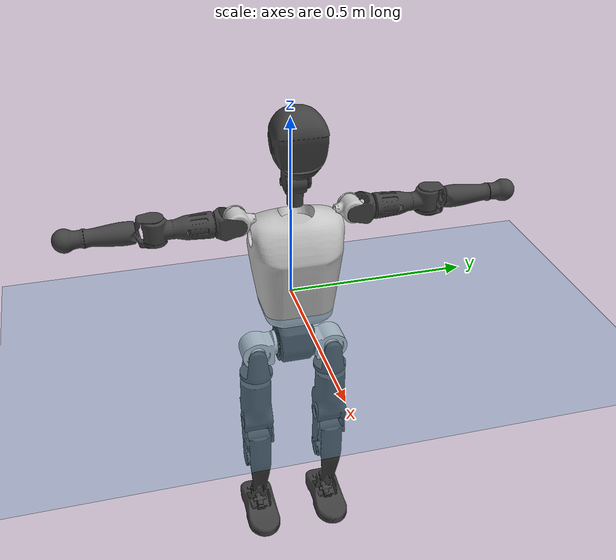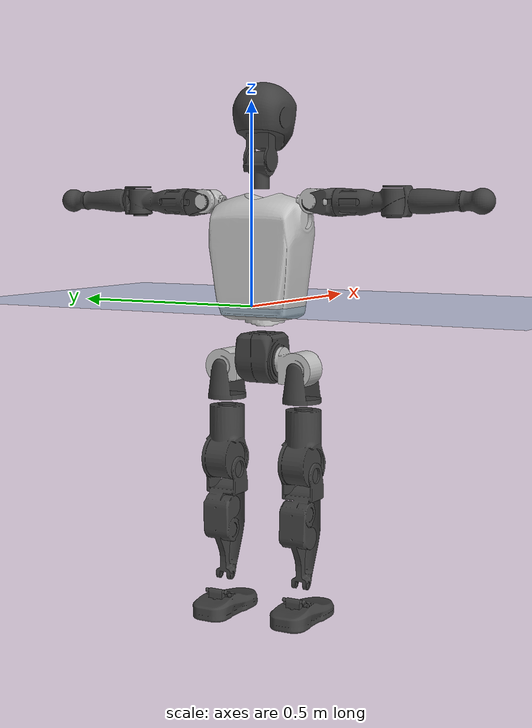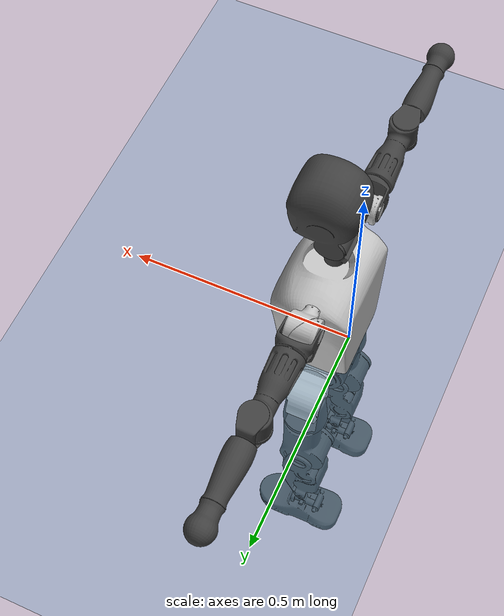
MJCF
<mujoco model="T1">
  <compiler angle="radian" assetdir="assets" balanceinertia="true" inertiafromgeom="false"/>

  <option timestep="0.005" density="1.2" viscosity="2e-05"/>

  <size nkey="1"/>

  <visual>
    <quality shadowsize="8192"/>
    <map shadowclip="0.5"/>
  </visual>

  <default>
    <default class="/">
      <joint armature="0.01" damping="0.01" frictionloss="0.1"/>
      <geom contype="0" conaffinity="0" group="1" solref="-1000 -80"/>
      <site size="0.01 0.005 0.005" group="5"/>
      <general forcelimited="true" biastype="affine" gainprm="25" biasprm="0 -25 -0.6"/>
      <default class="t1">
        <geom rgba="0.25 0.25 0.25 1"/>
        <default class="visual">
          <geom type="mesh" group="2"/>
        </default>
        <default class="collision">
          <geom group="3"/>
        </default>
        <default class="foot">
          <geom size="0.1115 0.05 0.015" type="box" condim="6" group="4" priority="1" solimp="0.015 1 0.015"/>
        </default>
        <default class="reward_collision_sphere">
          <geom group="5" rgba="1 0 0 1"/>
        </default>
      </default>
    </default>
  </default>

  <asset>
    <texture type="skybox" colorspace="auto" name="//unnamed_texture_0" builtin="gradient" rgb1="0.95 0.95 0.95" rgb2="0.95 0.95 0.95" width="100" height="600"/>
    <texture type="2d" colorspace="auto" name="texplane" builtin="checker" rgb1="0.345 0.575 0.748" rgb2="0.345 0.575 0.748" markrgb="1 1 1" width="512" height="512"/>
    <material name="MatPlane" class="/" texture="texplane" texuniform="true" texrepeat="2 2" specular="0.9"/>
    <mesh name="Trunk" class="/" file="Trunk.stl"/>
    <mesh name="H1" class="/" file="H1.stl"/>
    <mesh name="H2" class="/" file="H2.stl"/>
    <mesh name="AL1" class="/" file="AL1.stl"/>
    <mesh name="AL2" class="/" file="AL2.stl"/>
    <mesh name="AL3" class="/" file="AL3.stl"/>
    <mesh name="left_hand_link" class="/" file="left_hand_link.stl"/>
    <mesh name="AR1" class="/" file="AR1.stl"/>
    <mesh name="AR2" class="/" file="AR2.stl"/>
    <mesh name="AR3" class="/" file="AR3.stl"/>
    <mesh name="right_hand_link" class="/" file="right_hand_link.stl"/>
    <mesh name="Waist" class="/" file="Waist.stl"/>
    <mesh name="Hip_Pitch_Left" class="/" file="Hip_Pitch_Left.stl"/>
    <mesh name="Hip_Roll_Left" class="/" file="Hip_Roll_Left.stl"/>
    <mesh name="Hip_Yaw_Left" class="/" file="Hip_Yaw_Left.stl"/>
    <mesh name="Shank_Left" class="/" file="Shank_Left.stl"/>
    <mesh name="Ankle_Cross_Left" class="/" file="Ankle_Cross_Left.stl"/>
    <mesh name="left_foot_link" class="/" file="left_foot_link.stl"/>
    <mesh name="Hip_Pitch_Right" class="/" file="Hip_Pitch_Right.stl"/>
    <mesh name="Hip_Roll_Right" class="/" file="Hip_Roll_Right.stl"/>
    <mesh name="Hip_Yaw_Right" class="/" file="Hip_Yaw_Right.stl"/>
    <mesh name="Shank_Right" class="/" file="Shank_Right.stl"/>
    <mesh name="Ankle_Cross_Right" class="/" file="Ankle_Cross_Right.stl"/>
    <mesh name="right_foot_link" class="/" file="right_foot_link.stl"/>
  </asset>

  <worldbody>
    <geom name="floor" class="/" size="100 100 0.125" type="plane" group="0" material="MatPlane"/>
    <light name="toplight_shadow" class="/" pos="0 0 5" dir="0.0990148 0.0990148 -0.990148" type="directional" ambient="0.04 0.04 0.04" diffuse="0.55 0.55 0.55" specular="0.12 0.12 0.12"/>
    <light name="toplight_fill" class="/" pos="0 0 5" dir="0.0990148 0.0990148 -0.990148" type="directional" castshadow="false" ambient="0.04 0.04 0.04" diffuse="0.3 0.3 0.3" specular="0.08 0.08 0.08"/>
    <body name="trunk" childclass="t1" pos="9.68801e-05 -0.00171957 -0.000497019" quat="0.999999 -0.000558519 0.000600399 -0.0010171">
      <inertial pos="0.0390393 -0.00363585 0.123508" quat="0.999968 0.0014686 -0.00775443 -0.000943012" mass="10.7574" diaginertia="0.0245175 0.0742907 0.127555"/>
      <joint name="//unnamed_joint_0" type="free" armature="0" damping="0" frictionloss="0"/>
      <geom name="//unnamed_geom_1" class="visual" rgba="0.76 0.76 0.76 1" mesh="Trunk"/>
      <geom name="//unnamed_geom_2" class="collision" size="0.0738598 0.0984797 0.14772" pos="0.0460431 0 0.142583" type="box"/>
      <geom name="//unnamed_geom_3" class="reward_collision_sphere" size="0.113252" pos="0.0460431 0 0.118819"/>
      <geom name="//unnamed_geom_4" class="reward_collision_sphere" size="0.014772" pos="0.0460431 0.0848994 0"/>
      <geom name="//unnamed_geom_5" class="reward_collision_sphere" size="0.014772" pos="0.0460431 -0.0848994 0"/>
      <geom name="//unnamed_geom_6" class="reward_collision_sphere" size="0.014772" pos="0.0460431 0.106873 0.213874"/>
      <geom name="//unnamed_geom_7" class="reward_collision_sphere" size="0.014772" pos="0.0460431 -0.106873 0.213874"/>
      <site name="imu" pos="0.0130159 -0.00344212 -0.0130507" size="0.00984797"/>
      <camera name="track" pos="0 -1.99763 0" quat="0.707107 0.707107 0 0" mode="trackcom"/>
      <camera name="ego_camera" pos="0.093621 0 0.499039" quat="-0.5 -0.5 0.5 0.5"/>
      <body name="H1" pos="0.0454336 0.00124654 0.288986" quat="1 0.000250148 -0.000224317 0.000236469">
        <inertial pos="-0.00360811 0.000893867 0.0696071" quat="0.756379 -0.0125658 -0.00482654 0.653995" mass="0.427109" diaginertia="6.46841e-05 0.000218115 0.000335224"/>
        <joint name="AAHead_yaw" pos="0 0 0" axis="-0.0125954 0.000956387 0.99992" stiffness="0.00789428" range="-1.56841 1.59043" armature="0.00868936" damping="0.0101535" frictionloss="0.0988216"/>
        <geom name="//unnamed_geom_8" class="visual" mesh="H1"/>
        <body name="H2" pos="0.00154011 0.00237126 0.0727906" quat="1 -6.03723e-05 0.000100036 -0.000487049">
          <inertial pos="0.00719677 0.00356797 0.117625" quat="0.988029 0.106425 -0.0742092 -0.0834581" mass="0.606286" diaginertia="0.000564963 0.0019275 0.00409946"/>
          <joint name="Head_pitch" pos="0 0 0" axis="-0.00144546 -0.999985 -0.00529891" stiffness="0.00110075" range="-1.22898 0.349545" armature="0.00859174" damping="0.0106728" frictionloss="0.108309"/>
          <geom name="//unnamed_geom_9" class="visual" mesh="H2"/>
          <geom name="//unnamed_geom_10" class="collision" size="0.0787838" pos="0.00767386 0 0.130701"/>
          <geom name="//unnamed_geom_11" class="reward_collision_sphere" size="0.0886317" pos="0.0153477 0 0.118819"/>
        </body>
      </body>
      <body name="AL1" pos="0.0445887 0.106702 0.258037" quat="1 -0.000152074 0.000353049 -1.89438e-05">
        <inertial pos="-0.00317905 0.0437078 0.000320055" quat="0.501105 0.495014 -0.505487 0.498336" mass="0.509295" diaginertia="0.000370913 0.00130423 0.000678214"/>
        <joint name="Left_Shoulder_Pitch" pos="0 0 0" axis="0.0122085 0.999916 -0.00428431" stiffness="0.000271473" range="-3.29237 1.18732" armature="0.0103604" damping="0.00976897" frictionloss="0.100521"/>
        <geom name="//unnamed_geom_12" class="visual" rgba="0.76 0.76 0.76 1" mesh="AL1"/>
        <body name="AL2" pos="-0.000251374 0.0464374 -0.0027504" quat="1 -9.6715e-05 4.18556e-05 -0.000268947">
          <inertial pos="0.0046946 0.0361449 -0.00306443" quat="0.491365 0.504363 -0.482112 0.521293" mass="0.148932" diaginertia="0.000106074 0.00034311 0.00041004"/>
          <joint name="Left_Shoulder_Roll" pos="0 0 0" axis="-0.999966 0.00761939 0.00304026" range="-1.57817 1.71821" armature="0.00976692" damping="0.00357437" frictionloss="0.0964619"/>
          <geom name="//unnamed_geom_13" class="visual" mesh="AL2"/>
          <body name="AL3" pos="0.00128989 0.0614735 0.00169109" quat="1 0.000118606 5.86874e-05 -6.46891e-05">
            <inertial pos="-0.00281726 0.0850937 -0.000711902" quat="0.703645 0.710454 0.0101804 -0.00595856" mass="0.99275" diaginertia="0.00353745 0.0128277 0.0014511"/>
            <joint name="Left_Elbow_Pitch" pos="0 0 0" axis="-0.00118328 -0.999999 -0.00101807" range="-2.27695 2.29075" armature="0.00973484" damping="0.0200227" frictionloss="0.110228"/>
            <geom name="//unnamed_geom_14" class="visual" mesh="AL3"/>
            <geom name="//unnamed_geom_15" class="collision" size="0.0295439 0.0738598" pos="0 0.0499409 0" quat="0.707105 0.707108 0 0" type="cylinder"/>
            <geom name="//unnamed_geom_16" class="reward_collision_sphere" size="0.0354527"/>
            <body name="left_hand_link" pos="0.00308047 0.149749 0.00324575" quat="1 -0.000246332 -0.000181539 0.000401503">
              <inertial pos="0.00250143 0.1069 -0.00233505" quat="0.708568 0.705642 0.000394369 0.000462499" mass="0.312043" diaginertia="0.00216849 0.0082489 0.000525295"/>
              <joint name="Left_Elbow_Yaw" pos="0 0 0" axis="0.00523518 0.00588491 0.999969" range="-2.42725 0.0128308" armature="0.0111192" damping="0.0197744" frictionloss="0.0985657"/>
              <geom name="//unnamed_geom_17" class="visual" mesh="left_hand_link"/>
              <geom name="//unnamed_geom_18" class="collision" size="0.0295439 0.0861697" pos="0 0.129846 0" quat="0.707105 0.707108 0 0" type="cylinder"/>
              <geom name="//unnamed_geom_19" class="reward_collision_sphere" size="0.0492399"/>
              <geom name="//unnamed_geom_20" class="reward_collision_sphere" size="0.0344679" pos="0 0.10987 0"/>
              <geom name="//unnamed_geom_21" class="reward_collision_sphere" size="0.0344679" pos="0 0.214746 0"/>
            </body>
          </body>
        </body>
      </body>
      <body name="AR1" pos="0.0453631 -0.104456 0.259499" quat="1 0.000301186 -0.000341258 -0.000440214">
        <inertial pos="0.000144244 -0.0463585 0.00123138" quat="0.503757 0.494351 -0.506375 0.49541" mass="0.520604" diaginertia="0.0003624 0.00133588 0.000717877"/>
        <joint name="Right_Shoulder_Pitch" pos="0 0 0" axis="0.00044957 -0.999999 0.00109303" stiffness="0.00110972" range="-1.17886 3.3148" armature="0.00970915" damping="0.013352" frictionloss="0.0921335"/>
        <geom name="//unnamed_geom_22" class="visual" rgba="0.76 0.76 0.76 1" mesh="AR1"/>
        <body name="AR2" pos="2.73715e-05 -0.0475761 -0.00269299" quat="0.999999 0.000536162 0.00142239 0.000127682">
          <inertial pos="0.00202869 -0.0374554 0.000663943" quat="0.5218 0.487201 -0.503555 0.486613" mass="0.147742" diaginertia="0.00010325 0.000339988 0.000403081"/>
          <joint name="Right_Shoulder_Roll" pos="0 0 0" axis="-0.999996 0.00276672 0.000373073" range="-1.76724 1.54164" armature="0.00986252" damping="0" frictionloss="0.10367"/>
          <geom name="//unnamed_geom_23" class="visual" mesh="AR2"/>
          <body name="AR3" pos="-0.00312834 -0.0601815 0.000207153" quat="0.999999 0.000171794 0.000854042 0.00109728">
            <inertial pos="0.00168474 -0.0856544 0.00129906" quat="0.707416 0.706782 -0.00235915 -0.00411552" mass="0.969838" diaginertia="0.00346899 0.0128005 0.00146278"/>
            <joint name="Right_Elbow_Pitch" pos="0 0 0" axis="-0.00460098 0.999952 0.00862052" range="-2.28548 2.23227" armature="0.0100996" damping="0.00511835" frictionloss="0.106605"/>
            <geom name="//unnamed_geom_24" class="visual" mesh="AR3"/>
            <geom name="//unnamed_geom_25" class="collision" size="0.0295439 0.0738598" pos="0 -0.0499409 0" quat="0.707105 0.707108 0 0" type="cylinder"/>
            <geom name="//unnamed_geom_26" class="reward_collision_sphere" size="0.0354527"/>
            <body name="right_hand_link" pos="-0.00317467 -0.14924 0.00228874" quat="0.999999 -0.00123004 0.00077613 0.000270388">
              <inertial pos="0.00189075 -0.108808 -0.00187534" quat="0.706627 0.707585 -0.00110577 -0.00080835" mass="0.303781" diaginertia="0.00206181 0.00762565 0.000511427"/>
              <joint name="Right_Elbow_Yaw" pos="0 0 0" axis="-0.00121695 0.00143281 0.999998" range="0.00714331 2.38169" armature="0.00956474" damping="0.00673173" frictionloss="0.0970811"/>
              <geom name="//unnamed_geom_27" class="visual" mesh="right_hand_link"/>
              <geom name="//unnamed_geom_28" class="collision" size="0.0295439 0.0861697" pos="0 -0.129846 0" quat="0.707105 0.707108 0 0" type="cylinder"/>
              <geom name="//unnamed_geom_29" class="reward_collision_sphere" size="0.0492399"/>
              <geom name="//unnamed_geom_30" class="reward_collision_sphere" size="0.0344679" pos="0 -0.10987 0"/>
              <geom name="//unnamed_geom_31" class="reward_collision_sphere" size="0.0344679" pos="0 -0.214746 0"/>
            </body>
          </body>
        </body>
      </body>
      <body name="Waist" pos="0.0460449 -0.00264855 -0.135181" quat="1 0.000281837 -9.3433e-05 -3.1271e-05">
        <inertial pos="0.00137593 0.00218834 0.00973872" quat="0.9843 -0.00889141 -0.176169 -0.00625036" mass="2.30958" diaginertia="0.00138816 0.00498574 0.0105293"/>
        <joint name="Waist" pos="0 0 0" axis="-0.000681089 0.00155653 0.999999" range="-1.5982 1.54978" armature="0.00935971" damping="0.00215102" frictionloss="0.10913"/>
        <geom name="//unnamed_geom_32" class="visual" mesh="Waist"/>
        <body name="Hip_Pitch_Left" pos="0.00398939 0.104902 -0.000912888" quat="1 -1.66616e-07 -4.74738e-08 -2.24516e-07">
          <inertial pos="-0.000165629 -0.00819219 -0.0243608" quat="0.975279 0.220348 0.0163909 0.00292653" mass="0.947234" diaginertia="0.000471574 0.00142077 0.00290416"/>
          <joint name="Left_Hip_Pitch" pos="0 0 0" axis="0.00674562 0.999921 -0.0105671" stiffness="0.0140029" range="-1.81876 1.62806" armature="0.0100099" damping="0" frictionloss="0.100719"/>
          <geom name="//unnamed_geom_33" class="visual" rgba="0.76 0.76 0.76 1" mesh="Hip_Pitch_Left"/>
          <body name="Hip_Roll_Left" pos="0.0028424 0.00163311 -0.0267965" quat="1 -1.39434e-05 4.88002e-05 4.22158e-05">
            <inertial pos="0.00196015 -0.0010069 -0.0666145" quat="0.709774 -0.00940257 -0.00496109 0.704349" mass="0.374938" diaginertia="0.00049353 0.00150793 0.00122491"/>
            <joint name="Left_Hip_Roll" pos="0 0 0" axis="-0.999957 0.00769491 0.00513536" range="-1.59031 0.254096" armature="0.00919439" damping="0.0125743" frictionloss="0.0935445"/>
            <geom name="//unnamed_geom_34" class="visual" mesh="Hip_Roll_Left"/>
            <geom name="//unnamed_geom_35" class="reward_collision_sphere" size="0.0541638"/>
            <body name="Hip_Yaw_Left" pos="0.00166655 0.00234043 -0.0964932" quat="1 -0.000105401 -9.6251e-05 -0.000107379">
              <inertial pos="-0.00702362 -0.000394536 -0.105779" quat="0.702327 -0.0349186 -0.0198467 0.710721" mass="2.0393" diaginertia="0.00701744 0.0249087 0.00640137"/>
              <joint name="Left_Hip_Yaw" pos="0 0 0" axis="0.000242478 -0.000323519 -1" range="-0.980944 1.04501" armature="0.0109829" damping="0.00443512" frictionloss="0.0991465"/>
              <geom name="//unnamed_geom_36" class="visual" mesh="Hip_Yaw_Left"/>
              <geom name="//unnamed_geom_37" class="collision" size="0.0492399 0.0787838" type="cylinder"/>
              <body name="Shank_Left" pos="-0.0098173 0.000187799 -0.161993" quat="1 0.000221883 0.000248573 -0.000729863">
                <inertial pos="-0.00348448 9.42204e-06 -0.150515" quat="0.997809 0.00370347 -0.0230438 0.0619061" mass="1.65138" diaginertia="0.00924048 0.0331599 0.00414306"/>
                <joint name="Left_Knee_Pitch" pos="0 0 0" axis="-0.0019131 0.999998 -0.000950628" stiffness="0.00841507" range="0.0426586 2.32946" armature="0.00996453" damping="0.00531411" frictionloss="0.0988518"/>
                <geom name="//unnamed_geom_38" class="visual" mesh="Shank_Left"/>
                <geom name="//unnamed_geom_39" class="collision" size="0.0492399 0.0738598" pos="0 0 -0.142583" type="cylinder"/>
                <geom name="//unnamed_geom_40" class="reward_collision_sphere" size="0.0640118"/>
                <body name="Ankle_Cross_Left" pos="-0.00130231 -0.00078486 -0.335574" quat="1 -0.000153837 6.48974e-05 -0.000215829">
                  <inertial pos="-0.00527875 0.00265605 -0.00979447" quat="0.442432 0.551073 0.551182 0.443589" mass="0.0674428" diaginertia="7.90849e-06 2.47569e-05 2.70223e-05"/>
                  <joint name="Left_Ankle_Pitch" pos="0 0 0" axis="-0.0125731 0.999915 0.00338491" stiffness="0.00142863" range="-0.920803 0.336029" armature="0.00844626" damping="0.0131308" frictionloss="0.108956"/>
                  <geom name="//unnamed_geom_41" class="visual" mesh="Ankle_Cross_Left"/>
                  <body name="left_foot_link" pos="-0.000350976 0.00150827 -0.0124629" quat="0.999999 -0.000392584 0.000536797 0.0010184">
                    <inertial pos="-0.00270222 0.000865607 -0.0115396" quat="0.00852663 0.617031 -0.0011298 0.786892" mass="0.638979" diaginertia="0.000741478 0.00236511 0.00539361"/>
                    <joint name="Left_Ankle_Roll" pos="0 0 0" axis="-0.999987 0.00408492 -0.00318466" range="-0.495266 0.389509" armature="0.0109328" damping="0.0185868" frictionloss="0.0854398"/>
                    <geom name="//unnamed_geom_42" class="visual" mesh="left_foot_link"/>
                    <geom name="left_foot" class="foot" size="0.105957 0.0455607 0.0156238" pos="0.00767386 0 -0.0178228"/>
                    <geom name="//unnamed_geom_44" class="reward_collision_sphere" size="0.0512095" pos="0.00767386 0 -0.0178228"/>
                    <geom name="//unnamed_geom_45" class="reward_collision_sphere" size="0.0295439" pos="0.0729016 -0.0229728 -0.0178228"/>
                    <geom name="//unnamed_geom_46" class="reward_collision_sphere" size="0.0295439" pos="-0.053717 -0.0229728 -0.0178228"/>
                    <site name="left_foot" class="foot" pos="0.00767386 0 -0.0178228" size="0.00984797"/>
                  </body>
                </body>
              </body>
            </body>
          </body>
        </body>
        <body name="Hip_Pitch_Right" pos="-0.00154101 -0.108909 0.000696951" quat="0.999999 -0.000302293 -0.000855509 -0.000679779">
          <inertial pos="0.00115197 0.00487508 -0.0189031" quat="0.973817 -0.227058 0.0111176 -0.000962751" mass="0.973639" diaginertia="0.000489651 0.0014989 0.00309186"/>
          <joint name="Right_Hip_Pitch" pos="0 0 0" axis="0.000725359 -1 -0.000462803" range="-1.58316 1.78704" armature="0.0112371" damping="0.00601619" frictionloss="0.0930468"/>
          <geom name="//unnamed_geom_47" class="visual" rgba="0.76 0.76 0.76 1" mesh="Hip_Pitch_Right"/>
          <body name="Hip_Roll_Right" pos="0.00211096 -0.00265244 -0.0257159" quat="1 6.19262e-05 -1.81929e-06 0.000105908">
            <inertial pos="0.00138951 0.000586756 -0.0610557" quat="0.706995 -0.00703313 -0.00614006 0.707157" mass="0.389679" diaginertia="0.000476445 0.00160175 0.00124256"/>
            <joint name="Right_Hip_Roll" pos="0 0 0" axis="-0.999935 0.00471122 0.0103716" stiffness="0.00868413" range="-0.202783 1.52662" armature="0.00921868" damping="0" frictionloss="0.0862693"/>
            <geom name="//unnamed_geom_48" class="visual" mesh="Hip_Roll_Right"/>
            <geom name="//unnamed_geom_49" class="reward_collision_sphere" size="0.0541638"/>
            <body name="Hip_Yaw_Right" pos="0.00246973 -0.00309326 -0.0953391" quat="1 0.000248917 0.000822231 0.000397505">
              <inertial pos="-0.00406683 -0.00313242 -0.103674" quat="0.715127 -0.0363369 -0.0425772 0.69675" mass="2.09837" diaginertia="0.00666262 0.0258732 0.00596559"/>
              <joint name="Right_Hip_Yaw" pos="0 0 0" axis="-0.00845406 0.00150934 -0.999963" stiffness="0.0124403" range="-1.01912 0.991381" armature="0.00841478" damping="0.0179072" frictionloss="0.0946807"/>
              <geom name="//unnamed_geom_50" class="visual" mesh="Hip_Yaw_Right"/>
              <geom name="//unnamed_geom_51" class="collision" size="0.0492399 0.0787838" type="cylinder"/>
              <body name="Shank_Right" pos="-0.00832356 0.0018657 -0.160601" quat="0.999999 -0.000823976 0.000776198 -0.000704103">
                <inertial pos="-0.00302399 -0.0010423 -0.146419" quat="0.999292 -0.0125147 -0.0191005 -0.0298924" mass="1.66313" diaginertia="0.00957802 0.0341827 0.00473726"/>
                <joint name="Right_Knee_Pitch" pos="0 0 0" axis="0.000230259 -1 -2.92569e-05" range="-2.34515 0.0485171" armature="0.00979266" damping="0.0220317" frictionloss="0.100432"/>
                <geom name="//unnamed_geom_52" class="visual" mesh="Shank_Right"/>
                <geom name="//unnamed_geom_53" class="collision" size="0.0492399 0.0738598" pos="0 0 -0.142583" type="cylinder"/>
                <geom name="//unnamed_geom_54" class="reward_collision_sphere" size="0.0640118"/>
                <body name="Ankle_Cross_Right" pos="0.0025141 0.00106926 -0.334383" quat="0.999999 -0.000750808 -0.00106287 -0.000311557">
                  <inertial pos="-0.00178039 0.00302149 -0.00987258" quat="0.44248 0.551245 0.551031 0.443515" mass="0.0696511" diaginertia="7.5326e-06 2.56025e-05 2.59263e-05"/>
                  <joint name="Right_Ankle_Pitch" pos="0 0 0" axis="-0.00642625 -0.999931 -0.0098395" range="-0.388897 0.860368" armature="0.00953017" damping="0.0072292" frictionloss="0.103763"/>
                  <geom name="//unnamed_geom_55" class="visual" mesh="Ankle_Cross_Right"/>
                  <body name="right_foot_link" pos="0.00336469 -0.00106089 -0.0128321" quat="1 -4.53246e-05 -0.000113619 -7.39643e-05">
                    <inertial pos="0.000101454 0.00267003 -0.0112105" quat="0.00196411 0.624787 0.00617067 0.780768" mass="0.693364" diaginertia="0.000747772 0.00244386 0.00538555"/>
                    <joint name="Right_Ankle_Roll" pos="0 0 0" axis="-0.999993 0.00263623 -0.00253252" stiffness="0.000192024" range="-0.419713 0.396897" armature="0.00967166" damping="0.00567012" frictionloss="0.0868569"/>
                    <geom name="//unnamed_geom_56" class="visual" mesh="right_foot_link"/>
                    <geom name="right_foot" class="foot" size="0.098726 0.0492199 0.0154144" pos="0.00767386 0 -0.0178228"/>
                    <geom name="//unnamed_geom_58" class="reward_collision_sphere" size="0.0393919"/>
                    <geom name="//unnamed_geom_59" class="reward_collision_sphere" size="0.0295439" pos="0.00767386 0 -0.0178228"/>
                    <geom name="//unnamed_geom_60" class="reward_collision_sphere" size="0.0295439" pos="0.0729016 0.0229728 -0.0178228"/>
                    <geom name="//unnamed_geom_61" class="reward_collision_sphere" size="0.0295439" pos="-0.053717 0.0229728 -0.0178228"/>
                    <site name="right_foot" class="foot" pos="0.00767386 0 -0.0178228" size="0.00984797"/>
                  </body>
                </body>
              </body>
            </body>
          </body>
        </body>
      </body>
    </body>
  </worldbody>

  <contact>
    <pair class="/" geom1="floor" geom2="left_foot" name="//unnamed_contact_0"/>
    <pair class="/" geom1="floor" geom2="right_foot" name="//unnamed_contact_1"/>
  </contact>

  <actuator>
    <general name="AAHead_yaw" class="/" joint="AAHead_yaw" forcerange="-6.88056 6.88056" gainprm="23.1257" biasprm="0 -23.1257 -0.606437"/>
    <general name="Head_pitch" class="/" joint="Head_pitch" forcerange="-6.91966 6.91966" gainprm="23.1257" biasprm="0 -23.1257 -0.606437"/>
    <general name="Left_Shoulder_Pitch" class="/" joint="Left_Shoulder_Pitch" forcerange="-16.3816 16.3816" gainprm="23.1257" biasprm="0 -23.1257 -0.606437"/>
    <general name="Left_Shoulder_Roll" class="/" joint="Left_Shoulder_Roll" forcerange="-17.3612 17.3612" gainprm="23.1257" biasprm="0 -23.1257 -0.606437"/>
    <general name="Left_Elbow_Pitch" class="/" joint="Left_Elbow_Pitch" forcerange="-16.7185 16.7185" gainprm="23.1257" biasprm="0 -23.1257 -0.606437"/>
    <general name="Left_Elbow_Yaw" class="/" joint="Left_Elbow_Yaw" forcerange="-17.5337 17.5337" gainprm="23.1257" biasprm="0 -23.1257 -0.606437"/>
    <general name="Right_Shoulder_Pitch" class="/" joint="Right_Shoulder_Pitch" forcerange="-18.4011 18.4011" gainprm="23.1257" biasprm="0 -23.1257 -0.606437"/>
    <general name="Right_Shoulder_Roll" class="/" joint="Right_Shoulder_Roll" forcerange="-17.8918 17.8918" gainprm="23.1257" biasprm="0 -23.1257 -0.606437"/>
    <general name="Right_Elbow_Pitch" class="/" joint="Right_Elbow_Pitch" forcerange="-16.4389 16.4389" gainprm="23.1257" biasprm="0 -23.1257 -0.606437"/>
    <general name="Right_Elbow_Yaw" class="/" joint="Right_Elbow_Yaw" forcerange="-16.3407 16.3407" gainprm="23.1257" biasprm="0 -23.1257 -0.606437"/>
    <general name="Waist" class="/" joint="Waist" forcerange="-27.6445 27.6445" gainprm="23.1257" biasprm="0 -23.1257 -0.606437"/>
    <general name="Left_Hip_Pitch" class="/" joint="Left_Hip_Pitch" forcerange="-45.1894 45.1894" gainprm="23.1257" biasprm="0 -23.1257 -0.606437"/>
    <general name="Left_Hip_Roll" class="/" joint="Left_Hip_Roll" forcerange="-27.5928 27.5928" gainprm="23.1257" biasprm="0 -23.1257 -0.606437"/>
    <general name="Left_Hip_Yaw" class="/" joint="Left_Hip_Yaw" forcerange="-27.5524 27.5524" gainprm="23.1257" biasprm="0 -23.1257 -0.606437"/>
    <general name="Left_Knee_Pitch" class="/" joint="Left_Knee_Pitch" forcerange="-60.6599 60.6599" gainprm="23.1257" biasprm="0 -23.1257 -0.606437"/>
    <general name="Left_Ankle_Pitch" class="/" joint="Left_Ankle_Pitch" forcerange="-21.5212 21.5212" gainprm="23.1257" biasprm="0 -23.1257 -0.606437"/>
    <general name="Left_Ankle_Roll" class="/" joint="Left_Ankle_Roll" forcerange="-13.2649 13.2649" gainprm="23.1257" biasprm="0 -23.1257 -0.606437"/>
    <general name="Right_Hip_Pitch" class="/" joint="Right_Hip_Pitch" forcerange="-44.2805 44.2805" gainprm="23.1257" biasprm="0 -23.1257 -0.606437"/>
    <general name="Right_Hip_Roll" class="/" joint="Right_Hip_Roll" forcerange="-32.5039 32.5039" gainprm="23.1257" biasprm="0 -23.1257 -0.606437"/>
    <general name="Right_Hip_Yaw" class="/" joint="Right_Hip_Yaw" forcerange="-26.5389 26.5389" gainprm="23.1257" biasprm="0 -23.1257 -0.606437"/>
    <general name="Right_Knee_Pitch" class="/" joint="Right_Knee_Pitch" forcerange="-53.2929 53.2929" gainprm="23.1257" biasprm="0 -23.1257 -0.606437"/>
    <general name="Right_Ankle_Pitch" class="/" joint="Right_Ankle_Pitch" forcerange="-19.7422 19.7422" gainprm="23.1257" biasprm="0 -23.1257 -0.606437"/>
    <general name="Right_Ankle_Roll" class="/" joint="Right_Ankle_Roll" forcerange="-16.3302 16.3302" gainprm="23.1257" biasprm="0 -23.1257 -0.606437"/>
  </actuator>

  <sensor>
    <gyro site="imu" name="imu_angular_velocity"/>
    <velocimeter site="imu" name="imu_linear_velocity"/>
    <framelinvel objtype="site" objname="left_foot" name="left_foot_global_linear_velocity"/>
    <framelinvel objtype="site" objname="right_foot" name="right_foot_global_linear_velocity"/>
  </sensor>

  <keyframe>
    <key name="home" qpos="0 0 0.6385 1 0 0 0 0 0 0 1.4 0 -0.4 0 -1.4 0 0.4 0 -0.4 0 0 0.8 -0.4 0 0.4 0 0 -0.8 0.4 0"/>
  </keyframe>
</mujoco>
